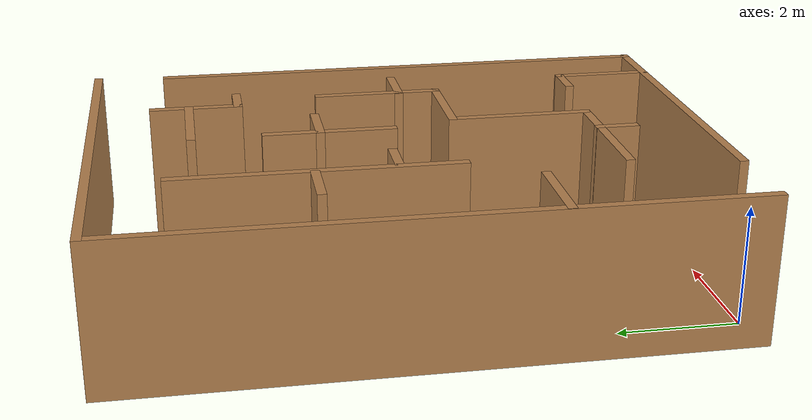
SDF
<?xml version='1.0'?>
<sdf version='1.7'>
  <model name='obstacle_course_5'>
    <pose>2.97704 4.93095 0 0 -0 0</pose>
    <link name='Wall_104'>
      <collision name='Wall_104_Collision'>
        <geometry>
          <box>
            <size>6 0.15 2.5</size>
          </box>
        </geometry>
        <pose>0 0 1.25 0 -0 0</pose>
      </collision>
      <visual name='Wall_104_Visual'>
        <pose>0 0 1.25 0 -0 0</pose>
        <geometry>
          <box>
            <size>6 0.15 2.5</size>
          </box>
        </geometry>
        <material>
          <script>
            <uri>file://media/materials/scripts/gazebo.material</uri>
            <name>Gazebo/Wood</name>
          </script>
          <ambient>0.12549 0.290196 0.529412 1</ambient>
        </material>
        <meta>
          <layer>0</layer>
        </meta>
      </visual>
      <pose>0.681457 -5.05025 0 0 -0 0</pose>
    </link>
    <link name='Wall_110'>
      <collision name='Wall_110_Collision'>
        <geometry>
          <box>
            <size>9 0.15 2.5</size>
          </box>
        </geometry>
        <pose>0 0 1.25 0 -0 0</pose>
      </collision>
      <visual name='Wall_110_Visual'>
        <pose>0 0 1.25 0 -0 0</pose>
        <geometry>
          <box>
            <size>9 0.15 2.5</size>
          </box>
        </geometry>
        <material>
          <script>
            <uri>file://media/materials/scripts/gazebo.material</uri>
            <name>Gazebo/Wood</name>
          </script>
          <ambient>0.12549 0.290196 0.529412 1</ambient>
        </material>
        <meta>
          <layer>0</layer>
        </meta>
      </visual>
      <pose>3.60646 -0.625252 0 0 -0 1.5708</pose>
    </link>
    <link name='Wall_116'>
      <collision name='Wall_116_Collision'>
        <geometry>
          <box>
            <size>4.75 0.15 2.5</size>
          </box>
        </geometry>
        <pose>0 0 1.25 0 -0 0</pose>
      </collision>
      <visual name='Wall_116_Visual'>
        <pose>0 0 1.25 0 -0 0</pose>
        <geometry>
          <box>
            <size>4.75 0.15 2.5</size>
          </box>
        </geometry>
        <material>
          <script>
            <uri>file://media/materials/scripts/gazebo.material</uri>
            <name>Gazebo/Wood</name>
          </script>
          <ambient>0.12549 0.290196 0.529412 1</ambient>
        </material>
        <meta>
          <layer>0</layer>
        </meta>
      </visual>
      <pose>-1.63089 1.54722 0 0 -0 -1.5708</pose>
    </link>
    <link name='Wall_118'>
      <collision name='Wall_118_Collision'>
        <geometry>
          <box>
            <size>1 0.15 2.5</size>
          </box>
        </geometry>
        <pose>0 0 1.25 0 -0 0</pose>
      </collision>
      <visual name='Wall_118_Visual'>
        <pose>0 0 1.25 0 -0 0</pose>
        <geometry>
          <box>
            <size>1 0.15 2.5</size>
          </box>
        </geometry>
        <material>
          <script>
            <uri>file://media/materials/scripts/gazebo.material</uri>
            <name>Gazebo/Wood</name>
          </script>
          <ambient>0.12549 0.290196 0.529412 1</ambient>
        </material>
        <meta>
          <layer>0</layer>
        </meta>
      </visual>
      <pose>-2.12416 1.59435 0 0 -0 3.14159</pose>
    </link>
    <link name='Wall_126'>
      <collision name='Wall_126_Collision'>
        <geometry>
          <box>
            <size>2.5 0.15 2.5</size>
          </box>
        </geometry>
        <pose>0 0 1.25 0 -0 0</pose>
      </collision>
      <visual name='Wall_126_Visual'>
        <pose>0 0 1.25 0 -0 0</pose>
        <geometry>
          <box>
            <size>2.5 0.15 2.5</size>
          </box>
        </geometry>
        <material>
          <script>
            <uri>file://media/materials/scripts/gazebo.material</uri>
            <name>Gazebo/Wood</name>
          </script>
          <ambient>0.12549 0.290196 0.529412 1</ambient>
        </material>
        <meta>
          <layer>0</layer>
        </meta>
      </visual>
      <pose>-0.728963 -3.32101 0 0 -0 0</pose>
    </link>
    <link name='Wall_127'>
      <collision name='Wall_127_Collision'>
        <geometry>
          <box>
            <size>2.5 0.15 2.5</size>
          </box>
        </geometry>
        <pose>0 0 1.25 0 -0 0</pose>
      </collision>
      <visual name='Wall_127_Visual'>
        <pose>0 0 1.25 0 -0 0</pose>
        <geometry>
          <box>
            <size>2.5 0.15 2.5</size>
          </box>
        </geometry>
        <material>
          <script>
            <uri>file://media/materials/scripts/gazebo.material</uri>
            <name>Gazebo/Wood</name>
          </script>
          <ambient>0.12549 0.290196 0.529412 1</ambient>
        </material>
        <meta>
          <layer>0</layer>
        </meta>
      </visual>
      <pose>0.446037 -2.14601 0 0 -0 1.5708</pose>
    </link>
    <link name='Wall_128'>
      <collision name='Wall_128_Collision'>
        <geometry>
          <box>
            <size>1.75 0.15 2.5</size>
          </box>
        </geometry>
        <pose>0 0 1.25 0 -0 0</pose>
      </collision>
      <visual name='Wall_128_Visual'>
        <pose>0 0 1.25 0 -0 0</pose>
        <geometry>
          <box>
            <size>1.75 0.15 2.5</size>
          </box>
        </geometry>
        <material>
          <script>
            <uri>file://media/materials/scripts/gazebo.material</uri>
            <name>Gazebo/Wood</name>
          </script>
          <ambient>0.12549 0.290196 0.529412 1</ambient>
        </material>
        <meta>
          <layer>0</layer>
        </meta>
      </visual>
      <pose>1.24604 -0.971007 0 0 -0 0</pose>
    </link>
    <link name='Wall_129'>
      <collision name='Wall_129_Collision'>
        <geometry>
          <box>
            <size>2.25 0.15 2.5</size>
          </box>
        </geometry>
        <pose>0 0 1.25 0 -0 0</pose>
      </collision>
      <visual name='Wall_129_Visual'>
        <pose>0 0 1.25 0 -0 0</pose>
        <geometry>
          <box>
            <size>2.25 0.15 2.5</size>
          </box>
        </geometry>
        <material>
          <script>
            <uri>file://media/materials/scripts/gazebo.material</uri>
            <name>Gazebo/Wood</name>
          </script>
          <ambient>0.12549 0.290196 0.529412 1</ambient>
        </material>
        <meta>
          <layer>0</layer>
        </meta>
      </visual>
      <pose>2.04604 0.078993 0 0 -0 1.5708</pose>
    </link>
    <link name='Wall_131'>
      <collision name='Wall_131_Collision'>
        <geometry>
          <box>
            <size>2.25 0.15 2.5</size>
          </box>
        </geometry>
        <pose>0 0 1.25 0 -0 0</pose>
      </collision>
      <visual name='Wall_131_Visual'>
        <pose>0 0 1.25 0 -0 0</pose>
        <geometry>
          <box>
            <size>2.25 0.15 2.5</size>
          </box>
        </geometry>
        <material>
          <script>
            <uri>file://media/materials/scripts/gazebo.material</uri>
            <name>Gazebo/Wood</name>
          </script>
          <ambient>0.12549 0.290196 0.529412 1</ambient>
        </material>
        <meta>
          <layer>0</layer>
        </meta>
      </visual>
      <pose>0.144101 1.15877 0 0 -0 -1.5708</pose>
    </link>
    <link name='Wall_133'>
      <collision name='Wall_133_Collision'>
        <geometry>
          <box>
            <size>1 0.15 2.5</size>
          </box>
        </geometry>
        <pose>0 0 1.25 0 -0 0</pose>
      </collision>
      <visual name='Wall_133_Visual'>
        <pose>0 0 1.25 0 -0 0</pose>
        <geometry>
          <box>
            <size>1 0.15 2.5</size>
          </box>
        </geometry>
        <material>
          <script>
            <uri>file://media/materials/scripts/gazebo.material</uri>
            <name>Gazebo/Wood</name>
          </script>
          <ambient>0.12549 0.290196 0.529412 1</ambient>
        </material>
        <meta>
          <layer>0</layer>
        </meta>
      </visual>
      <pose>0.5691 1.32127 0 0 -0 0</pose>
    </link>
    <link name='Wall_137'>
      <collision name='Wall_137_Collision'>
        <geometry>
          <box>
            <size>1.75 0.15 2.5</size>
          </box>
        </geometry>
        <pose>0 0 1.25 0 -0 0</pose>
      </collision>
      <visual name='Wall_137_Visual'>
        <pose>0 0 1.25 0 -0 0</pose>
        <geometry>
          <box>
            <size>1.75 0.15 2.5</size>
          </box>
        </geometry>
        <material>
          <script>
            <uri>file://media/materials/scripts/gazebo.material</uri>
            <name>Gazebo/Wood</name>
          </script>
          <ambient>0.12549 0.290196 0.529412 1</ambient>
        </material>
        <meta>
          <layer>0</layer>
        </meta>
      </visual>
      <pose>2.54058 -4.23629 0 0 -0 1.5708</pose>
    </link>
    <link name='Wall_138'>
      <collision name='Wall_138_Collision'>
        <geometry>
          <box>
            <size>0.75 0.15 2.5</size>
          </box>
        </geometry>
        <pose>0 0 1.25 0 -0 0</pose>
      </collision>
      <visual name='Wall_138_Visual'>
        <pose>0 0 1.25 0 -0 0</pose>
        <geometry>
          <box>
            <size>0.75 0.15 2.5</size>
          </box>
        </geometry>
        <material>
          <script>
            <uri>file://media/materials/scripts/gazebo.material</uri>
            <name>Gazebo/Wood</name>
          </script>
          <ambient>0.12549 0.290196 0.529412 1</ambient>
        </material>
        <meta>
          <layer>0</layer>
        </meta>
      </visual>
      <pose>2.24058 -3.43629 0 0 -0 3.14159</pose>
    </link>
    <link name='Wall_142'>
      <collision name='Wall_142_Collision'>
        <geometry>
          <box>
            <size>1.5 0.15 2.5</size>
          </box>
        </geometry>
        <pose>0 0 1.25 0 -0 0</pose>
      </collision>
      <visual name='Wall_142_Visual'>
        <pose>0 0 1.25 0 -0 0</pose>
        <geometry>
          <box>
            <size>1.5 0.15 2.5</size>
          </box>
        </geometry>
        <material>
          <script>
            <uri>file://media/materials/scripts/gazebo.material</uri>
            <name>Gazebo/Wood</name>
          </script>
          <ambient>0.12549 0.290196 0.529412 1</ambient>
        </material>
        <meta>
          <layer>0</layer>
        </meta>
      </visual>
      <pose>-2.99575 -1.87972 0 0 -0 0</pose>
    </link>
    <link name='Wall_144'>
      <collision name='Wall_144_Collision'>
        <geometry>
          <box>
            <size>1 0.15 2.5</size>
          </box>
        </geometry>
        <pose>0 0 1.25 0 -0 0</pose>
      </collision>
      <visual name='Wall_144_Visual'>
        <pose>0 0 1.25 0 -0 0</pose>
        <geometry>
          <box>
            <size>1 0.15 2.5</size>
          </box>
        </geometry>
        <material>
          <script>
            <uri>file://media/materials/scripts/gazebo.material</uri>
            <name>Gazebo/Wood</name>
          </script>
          <ambient>0.12549 0.290196 0.529412 1</ambient>
        </material>
        <meta>
          <layer>0</layer>
        </meta>
      </visual>
      <pose>2.45114 -0.296873 0 0 -0 0</pose>
    </link>
    <link name='Wall_146'>
      <collision name='Wall_146_Collision'>
        <geometry>
          <box>
            <size>0.75 0.15 2.5</size>
          </box>
        </geometry>
        <pose>0 0 1.25 0 -0 0</pose>
      </collision>
      <visual name='Wall_146_Visual'>
        <pose>0 0 1.25 0 -0 0</pose>
        <geometry>
          <box>
            <size>0.75 0.15 2.5</size>
          </box>
        </geometry>
        <material>
          <script>
            <uri>file://media/materials/scripts/gazebo.material</uri>
            <name>Gazebo/Wood</name>
          </script>
          <ambient>0.12549 0.290196 0.529412 1</ambient>
        </material>
        <meta>
          <layer>0</layer>
        </meta>
      </visual>
      <pose>-0.367879 -3.61542 0 0 -0 -1.5708</pose>
    </link>
    <link name='Wall_148'>
      <collision name='Wall_148_Collision'>
        <geometry>
          <box>
            <size>0.75 0.15 2.5</size>
          </box>
        </geometry>
        <pose>0 0 1.25 0 -0 0</pose>
      </collision>
      <visual name='Wall_148_Visual'>
        <pose>0 0 1.25 0 -0 0</pose>
        <geometry>
          <box>
            <size>0.75 0.15 2.5</size>
          </box>
        </geometry>
        <material>
          <script>
            <uri>file://media/materials/scripts/gazebo.material</uri>
            <name>Gazebo/Wood</name>
          </script>
          <ambient>0.12549 0.290196 0.529412 1</ambient>
        </material>
        <meta>
          <layer>0</layer>
        </meta>
      </visual>
      <pose>-1.24559 0.272144 0 0 -0 0</pose>
    </link>
    <link name='Wall_154'>
      <collision name='Wall_154_Collision'>
        <geometry>
          <box>
            <size>1.75 0.15 2.5</size>
          </box>
        </geometry>
        <pose>0 0 1.25 0 -0 0</pose>
      </collision>
      <visual name='Wall_154_Visual'>
        <pose>0 0 1.25 0 -0 0</pose>
        <geometry>
          <box>
            <size>1.75 0.15 2.5</size>
          </box>
        </geometry>
        <material>
          <script>
            <uri>file://media/materials/scripts/gazebo.material</uri>
            <name>Gazebo/Wood</name>
          </script>
          <ambient>0.12549 0.290196 0.529412 1</ambient>
        </material>
        <meta>
          <layer>0</layer>
        </meta>
      </visual>
      <pose>0.931045 3.43885 0 0 -0 0</pose>
    </link>
    <link name='Wall_155'>
      <collision name='Wall_155_Collision'>
        <geometry>
          <box>
            <size>0.75 0.15 2.5</size>
          </box>
        </geometry>
        <pose>0 0 1.25 0 -0 0</pose>
      </collision>
      <visual name='Wall_155_Visual'>
        <pose>0 0 1.25 0 -0 0</pose>
        <geometry>
          <box>
            <size>0.75 0.15 2.5</size>
          </box>
        </geometry>
        <material>
          <script>
            <uri>file://media/materials/scripts/gazebo.material</uri>
            <name>Gazebo/Wood</name>
          </script>
          <ambient>0.12549 0.290196 0.529412 1</ambient>
        </material>
        <meta>
          <layer>0</layer>
        </meta>
      </visual>
      <pose>1.73104 3.73885 0 0 -0 1.5708</pose>
    </link>
    <link name='Wall_164'>
      <collision name='Wall_164_Collision'>
        <geometry>
          <box>
            <size>1 0.15 2.5</size>
          </box>
        </geometry>
        <pose>0 0 1.25 0 -0 0</pose>
      </collision>
      <visual name='Wall_164_Visual'>
        <pose>0 0 1.25 0 -0 0</pose>
        <geometry>
          <box>
            <size>1 0.15 2.5</size>
          </box>
        </geometry>
        <material>
          <script>
            <uri>file://media/materials/scripts/gazebo.material</uri>
            <name>Gazebo/Wood</name>
          </script>
          <ambient>0.12549 0.290196 0.529412 1</ambient>
        </material>
        <meta>
          <layer>0</layer>
        </meta>
      </visual>
      <pose>1.73104 3.01385 0 0 -0 -1.5708</pose>
    </link>
    <link name='Wall_165'>
      <collision name='Wall_165_Collision'>
        <geometry>
          <box>
            <size>0.75 0.15 2.5</size>
          </box>
        </geometry>
        <pose>0 0 1.25 0 -0 0</pose>
      </collision>
      <visual name='Wall_165_Visual'>
        <pose>0 0 1.25 0 -0 0</pose>
        <geometry>
          <box>
            <size>0.75 0.15 2.5</size>
          </box>
        </geometry>
        <material>
          <script>
            <uri>file://media/materials/scripts/gazebo.material</uri>
            <name>Gazebo/Wood</name>
          </script>
          <ambient>0.12549 0.290196 0.529412 1</ambient>
        </material>
        <meta>
          <layer>0</layer>
        </meta>
      </visual>
      <pose>2.03105 2.58885 0 0 -0 0</pose>
    </link>
    <link name='Wall_95'>
      <collision name='Wall_95_Collision'>
        <geometry>
          <box>
            <size>10.25 0.15 2.5</size>
          </box>
        </geometry>
        <pose>0 0 1.25 0 -0 0</pose>
      </collision>
      <visual name='Wall_95_Visual'>
        <pose>0 0 1.25 0 -0 0</pose>
        <geometry>
          <box>
            <size>10.25 0.15 2.5</size>
          </box>
        </geometry>
        <material>
          <script>
            <uri>file://media/materials/scripts/gazebo.material</uri>
            <name>Gazebo/Wood</name>
          </script>
          <ambient>0.12549 0.290196 0.529412 1</ambient>
        </material>
        <meta>
          <layer>0</layer>
        </meta>
      </visual>
      <pose>-3.675 0.000252 0 0 -0 1.5708</pose>
    </link>
    <link name='Wall_96'>
      <collision name='Wall_96_Collision'>
        <geometry>
          <box>
            <size>7.5 0.15 2.5</size>
          </box>
        </geometry>
        <pose>0 0 1.25 0 -0 0</pose>
      </collision>
      <visual name='Wall_96_Visual'>
        <pose>0 0 1.25 0 -0 0</pose>
        <geometry>
          <box>
            <size>7.5 0.15 2.5</size>
          </box>
        </geometry>
        <material>
          <script>
            <uri>file://media/materials/scripts/gazebo.material</uri>
            <name>Gazebo/Wood</name>
          </script>
          <ambient>0.12549 0.290196 0.529412 1</ambient>
        </material>
        <meta>
          <layer>0</layer>
        </meta>
      </visual>
      <pose>0 5.05025 0 0 -0 0</pose>
    </link>
    <static>1</static>
  </model>
</sdf>
